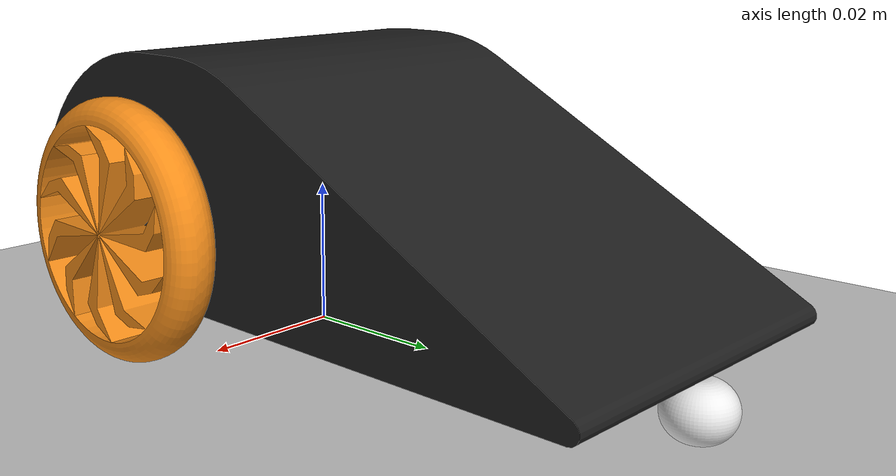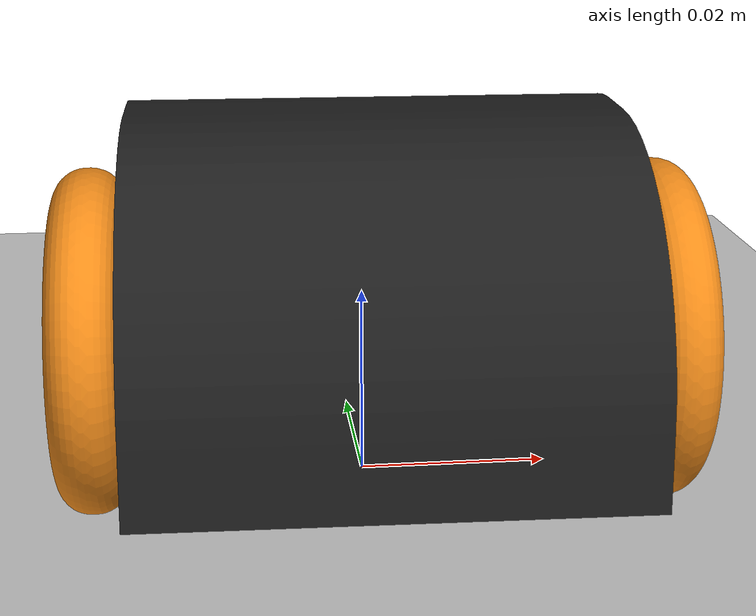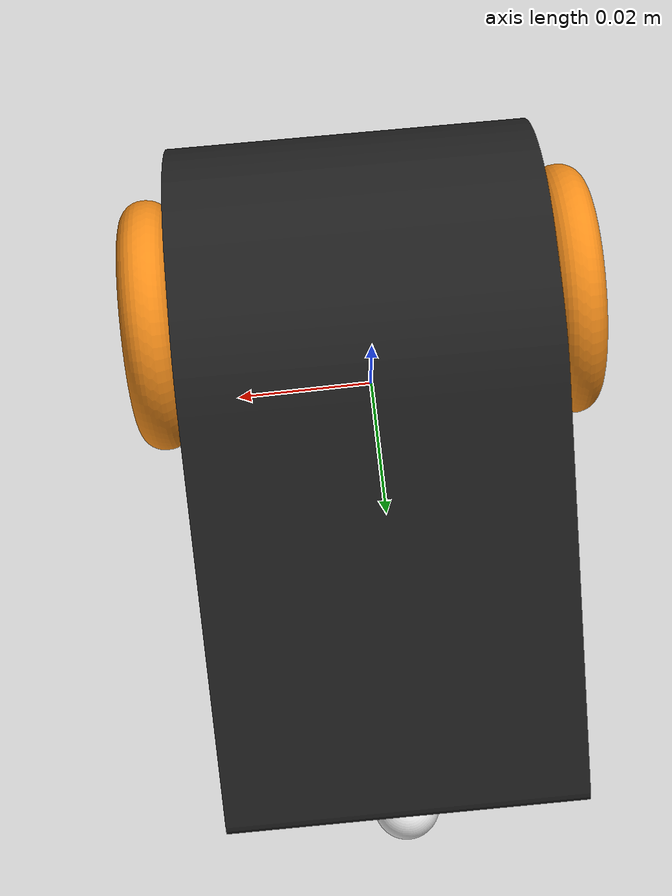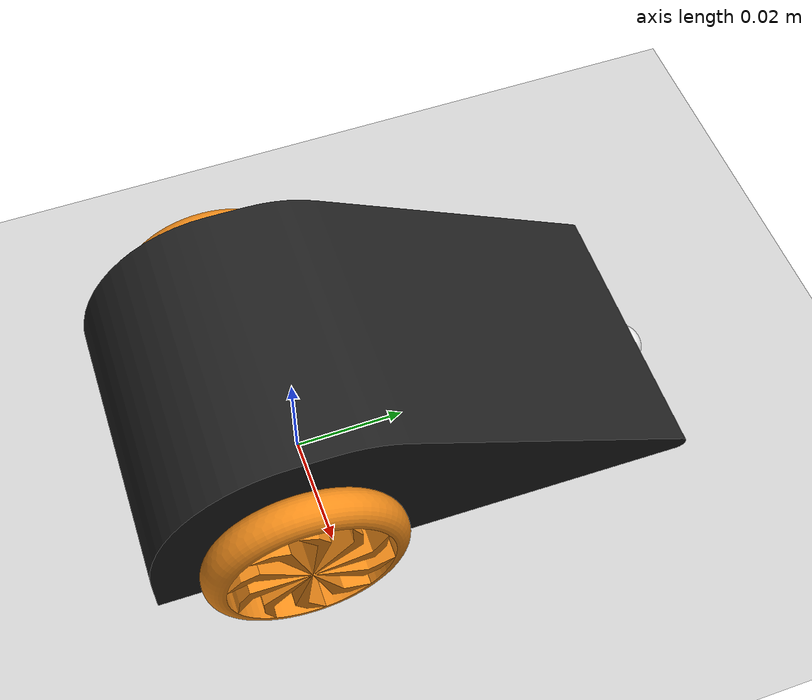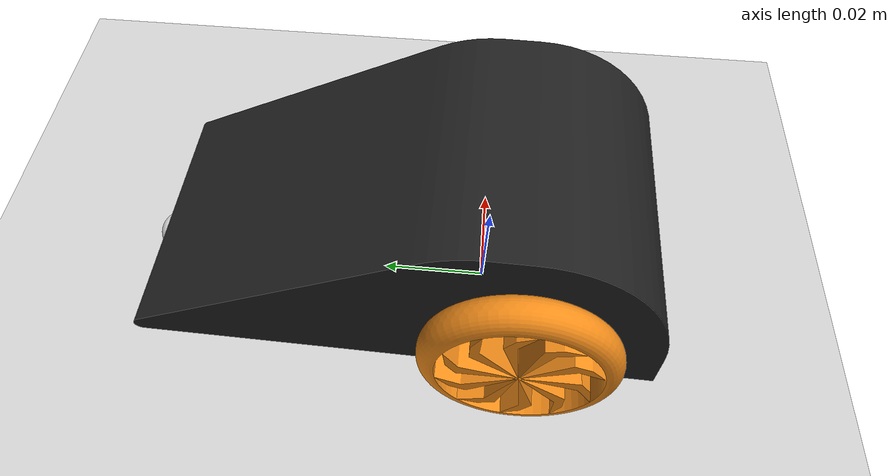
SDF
<sdf version="1.7">
 <world name="default">
  <model name="ground_plane">
   <static>1</static>
   <link name="link">
    <collision name="collision">
     <geometry><plane><normal>0 0 1</normal><size>100 100</size></plane></geometry>
     <surface><friction><ode><mu>100</mu><mu2>50</mu2></ode></friction></surface>
    </collision>
    <visual name="visual">
     <cast_shadows>0</cast_shadows>
     <geometry><plane><normal>0 0 1</normal><size>100 100</size></plane></geometry>
     <material>
      <script><uri>file://media/materials/scripts/gazebo.material</uri><name>Gazebo/Grey</name></script>
     </material>
    </visual>
   </link>
  </model>
  <model name="mini">
   <link name="base_footprint">
    <inertial>
     <pose>0.007288 0 0.026334 0 -0 0</pose>
     <mass>0.77692</mass>
     <inertia>
      <ixx>0.000207</ixx>
      <ixy>-3.00927e-36</ixy>
      <ixz>-4.8e-05</ixz>
      <iyy>0.000474</iyy>
      <iyz>0</iyz>
      <izz>0.00056</izz>
     </inertia>
    </inertial>
    <collision name="base_footprint_fixed_joint_lump__base_link_collision">
     <pose>0 0 0.005 0 -0 0</pose>
     <geometry>
      <mesh>
       <scale>0.001 0.001 0.001</scale>
       <uri>file:///home/tune65/path_planning/install/mini_description/share/mini_description/meshes/base_link.stl</uri>
      </mesh>
     </geometry>
     <surface><friction><ode><mu>0.2</mu><mu2>0.2</mu2></ode></friction></surface>
    </collision>
    <visual name="base_footprint_fixed_joint_lump__base_link_visual">
     <pose>0 0 0.005 0 -0 0</pose>
     <geometry>
      <mesh>
       <scale>0.001 0.001 0.001</scale>
       <uri>file:///home/tune65/path_planning/install/mini_description/share/mini_description/meshes/base_link.stl</uri>
      </mesh>
     </geometry>
     <material>
      <script><name>Gazebo/Black</name><uri>file://media/materials/scripts/gazebo.material</uri></script>
     </material>
    </visual>
    <self_collide>1</self_collide>
   </link>
   <joint name="Revolute 3" type="revolute">
    <pose relative_to="base_footprint">-0.046999 0 0.005 0 -0 0</pose>
    <parent>base_footprint</parent>
    <child>wheel_c_1</child>
    <axis>
     <xyz>0 0 -1</xyz>
     <limit><lower>-1e+16</lower><upper>1e+16</upper></limit>
     <dynamics><spring_reference>0</spring_reference><spring_stiffness>0</spring_stiffness></dynamics>
    </axis>
   </joint>
   <link name="wheel_c_1">
    <pose relative_to="Revolute 3">0 0 0 0 -0 0</pose>
    <inertial>
     <pose>0 0 0.004297 0 -0 0</pose>
     <mass>0.00272313</mass>
     <inertia><ixx>0</ixx><ixy>0</ixy><ixz>0</ixz><iyy>0</iyy><iyz>0</iyz><izz>0</izz></inertia>
    </inertial>
    <collision name="wheel_c_1_collision">
     <pose>0.046999 0 0 0 -0 0</pose>
     <geometry>
      <mesh>
       <scale>0.001 0.001 0.001</scale>
       <uri>file:///home/tune65/path_planning/install/mini_description/share/mini_description/meshes/wheel_c_1.stl</uri>
      </mesh>
     </geometry>
     <surface><friction><ode><mu>0.2</mu><mu2>0.2</mu2></ode></friction></surface>
    </collision>
    <visual name="wheel_c_1_visual">
     <pose>0.046999 0 0 0 -0 0</pose>
     <geometry>
      <mesh>
       <scale>0.001 0.001 0.001</scale>
       <uri>file:///home/tune65/path_planning/install/mini_description/share/mini_description/meshes/wheel_c_1.stl</uri>
      </mesh>
     </geometry>
     <material>
      <script><name>Gazebo/White</name><uri>file://media/materials/scripts/gazebo.material</uri></script>
     </material>
    </visual>
    <self_collide>1</self_collide>
   </link>
   <joint name="Revolute 6" type="revolute">
    <pose relative_to="base_footprint">0.021999 -0.025 0.023 0 -0 0</pose>
    <parent>base_footprint</parent>
    <child>wheel_l_1</child>
    <axis>
     <xyz>0 -1 0</xyz>
     <limit><lower>-1e+16</lower><upper>1e+16</upper></limit>
     <dynamics><spring_reference>0</spring_reference><spring_stiffness>0</spring_stiffness></dynamics>
    </axis>
   </joint>
   <link name="wheel_l_1">
    <pose relative_to="Revolute 6">0 0 0 0 -0 0</pose>
    <inertial>
     <pose>-0 -0.003787 0 0 -0 0</pose>
     <mass>0.0240485</mass>
     <inertia><ixx>2e-06</ixx><ixy>0</ixy><ixz>0</ixz><iyy>4e-06</iyy><iyz>0</iyz><izz>2e-06</izz></inertia>
    </inertial>
    <collision name="wheel_l_1_collision">
     <pose>-0.021999 0.025 -0.018 0 -0 0</pose>
     <geometry>
      <mesh>
       <scale>0.001 0.001 0.001</scale>
       <uri>file:///home/tune65/path_planning/install/mini_description/share/mini_description/meshes/wheel_l_1.stl</uri>
      </mesh>
     </geometry>
     <surface><friction><ode><mu>0.2</mu><mu2>0.2</mu2></ode></friction></surface>
    </collision>
    <visual name="wheel_l_1_visual">
     <pose>-0.021999 0.025 -0.018 0 -0 0</pose>
     <geometry>
      <mesh>
       <scale>0.001 0.001 0.001</scale>
       <uri>file:///home/tune65/path_planning/install/mini_description/share/mini_description/meshes/wheel_l_1.stl</uri>
      </mesh>
     </geometry>
     <material>
      <script><name>Gazebo/Orange</name><uri>file://media/materials/scripts/gazebo.material</uri></script>
     </material>
    </visual>
    <self_collide>1</self_collide>
   </link>
   <joint name="Revolute 7" type="revolute">
    <pose relative_to="base_footprint">0.021999 0.025 0.023 0 -0 0</pose>
    <parent>base_footprint</parent>
    <child>wheel_r_1</child>
    <axis>
     <xyz>0 -1 0</xyz>
     <limit><lower>-1e+16</lower><upper>1e+16</upper></limit>
     <dynamics><spring_reference>0</spring_reference><spring_stiffness>0</spring_stiffness></dynamics>
    </axis>
   </joint>
   <link name="wheel_r_1">
    <pose relative_to="Revolute 7">0 0 0 0 -0 0</pose>
    <inertial>
     <pose>-0 0.003787 0 0 -0 0</pose>
     <mass>0.0240485</mass>
     <inertia><ixx>2e-06</ixx><ixy>0</ixy><ixz>0</ixz><iyy>4e-06</iyy><iyz>0</iyz><izz>2e-06</izz></inertia>
    </inertial>
    <collision name="wheel_r_1_collision">
     <pose>-0.021999 -0.025 -0.018 0 -0 0</pose>
     <geometry>
      <mesh>
       <scale>0.001 0.001 0.001</scale>
       <uri>file:///home/tune65/path_planning/install/mini_description/share/mini_description/meshes/wheel_r_1.stl</uri>
      </mesh>
     </geometry>
     <surface><friction><ode><mu>0.2</mu><mu2>0.2</mu2></ode></friction></surface>
    </collision>
    <visual name="wheel_r_1_visual">
     <pose>-0.021999 -0.025 -0.018 0 -0 0</pose>
     <geometry>
      <mesh>
       <scale>0.001 0.001 0.001</scale>
       <uri>file:///home/tune65/path_planning/install/mini_description/share/mini_description/meshes/wheel_r_1.stl</uri>
      </mesh>
     </geometry>
     <material>
      <script><name>Gazebo/Orange</name><uri>file://media/materials/scripts/gazebo.material</uri></script>
     </material>
    </visual>
    <self_collide>1</self_collide>
   </link>
   <static>0</static>
   <plugin name="gazebo_base_controller" filename="libgazebo_ros_diff_drive.so">
    <odometry_frame>odom</odometry_frame>
    <commandTopic>cmd_vel</commandTopic>
    <publish_odom>1</publish_odom>
    <publish_odom_tf>1</publish_odom_tf>
    <update_rate>30.0</update_rate>
    <left_joint>Revolute 6</left_joint>
    <right_joint>Revolute 7</right_joint>
    <wheel_separation>1.0</wheel_separation>
    <wheel_diameter>0.3</wheel_diameter>
    <max_wheel_acceleration>0.3</max_wheel_acceleration>
    <robotBaseFrame>base_link</robotBaseFrame>
   </plugin>
   <pose>0.00124 0.015504 -0.005527 -1.6e-05 -0.000209 -1.58869</pose>
  </model>
 </world>
</sdf>
